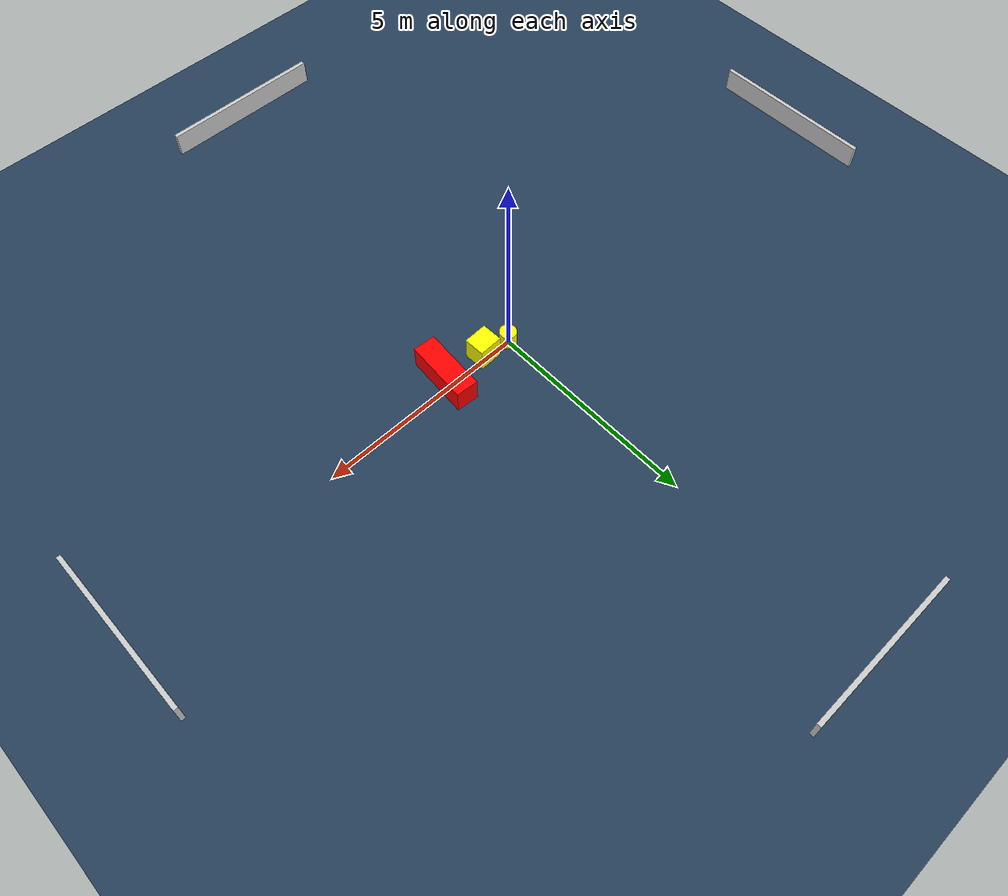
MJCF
<?xml version="1.0" ?>
<mujoco model="generated_environment">
  <option timestep="0.01" integrator="RK4" cone="elliptic"/>
  <default>
    <geom density="1"/>
  </default>
  <asset>
    <texture builtin="gradient" height="3072" name="skybox" rgb1="0.3 0.5 0.7" rgb2="0 0 0" type="skybox" width="512"/>
    <texture builtin="checker" height="300" name="groundplane" rgb1="0.2 0.3 0.4" rgb2="0.1 0.2 0.3" type="2d" width="300"/>
    <material name="groundplane" reflectance="0.2" texrepeat="5 5" texture="groundplane"/>
  </asset>
  <worldbody>
    <light dir="0 0 -1" directional="true" pos="0 0 1.5"/>
    <geom condim="3" friction="0.5 0.005 0.001" material="groundplane" name="floor" pos="0 0 0" size="0 0 0.05" type="plane"/>
    <body name="walls">
      <geom name="wall_1" condim="4" pos="-10.0 0.0 0.3" rgba="0.800000011920929 0.800000011920929 0.800000011920929 1.0" size="0.05 2.0 0.3" type="box"/>
      <geom name="wall_2" condim="4" pos="10.0 0.0 0.3" rgba="0.800000011920929 0.800000011920929 0.800000011920929 1.0" size="0.05 2.0 0.3" type="box"/>
      <geom name="wall_3" condim="4" pos="0.0 -10.0 0.3" rgba="0.800000011920929 0.800000011920929 0.800000011920929 1.0" size="2.0 0.05 0.3" type="box"/>
      <geom name="wall_4" condim="4" pos="0.0 10.0 0.3" rgba="0.800000011920929 0.800000011920929 0.800000011920929 1.0" size="2.0 0.05 0.3" type="box"/>
    </body>
    <body name="robot">
      <joint name="joint_x" type="slide" pos="0 0 0" axis="1 0 0"/>
      <joint name="joint_y" type="slide" pos="0 0 0" axis="0 1 0"/>
      <geom name="robot" type="cylinder" pos="0.0 0.0 0.2" size="0.2 0.2 0.0" mass="5.0" friction="1.0 0.005 0.0001" condim="4" rgba="1.0 1.0 0.0 1.0"/>
    </body>
    <body name="obstacle_1_movable">
      <geom name="obstacle_1_movable" condim="4" pos="0.6452352042368097 -0.1157865957481115 0.3" euler="0 0 92.10662745171915" friction="0.0 0.005 0.001" rgba="1.0 1.0 0.0 1.0" size="0.2492670163855652 0.2842843064093969 0.3" type="box" mass="0.1"/>
      <joint type="free"/>
    </body>
    <body name="obstacle_2_static">
      <geom name="obstacle_2_static" condim="4" pos="1.69216783524619 -0.17945747321437963 0.3" euler="0 0 85.81316863112338" friction="0.0 0.005 0.001" rgba="1.0 0.0 0.0 1.0" size="0.7641657220168787 0.2652296939320597 0.3" type="box"/>
    </body>
  </worldbody>
  <actuator>
    <motor name="actuator_x" joint="joint_x" gear="1" ctrlrange="-1 1"/>
    <motor name="actuator_y" joint="joint_y" gear="1" ctrlrange="-1 1"/>
  </actuator>
</mujoco>
